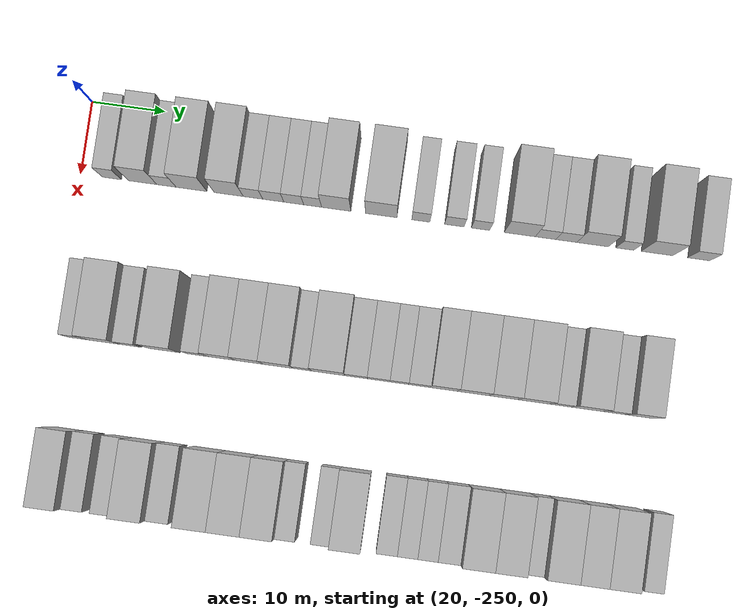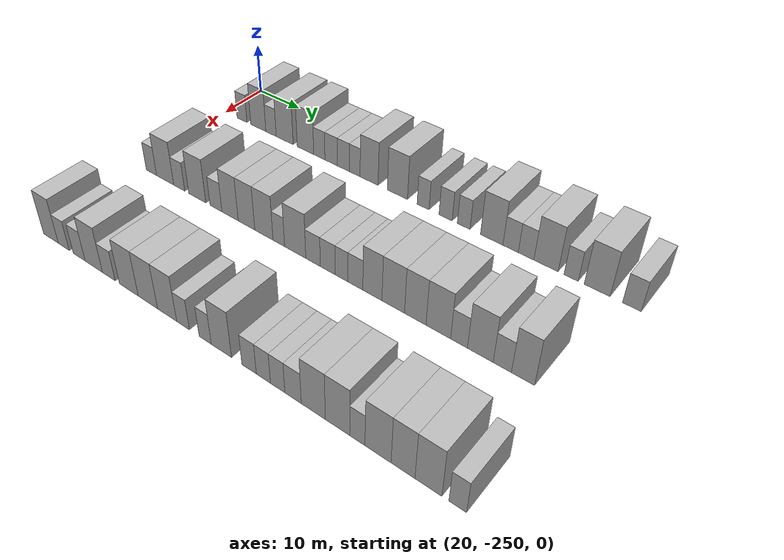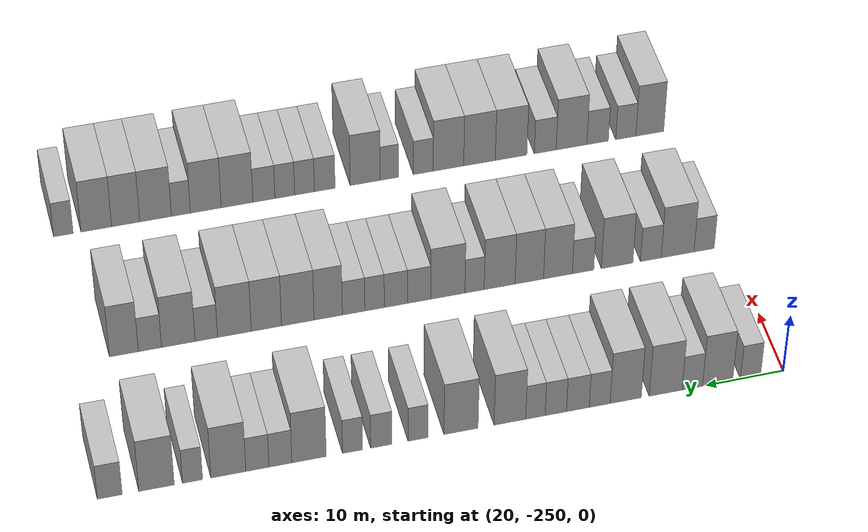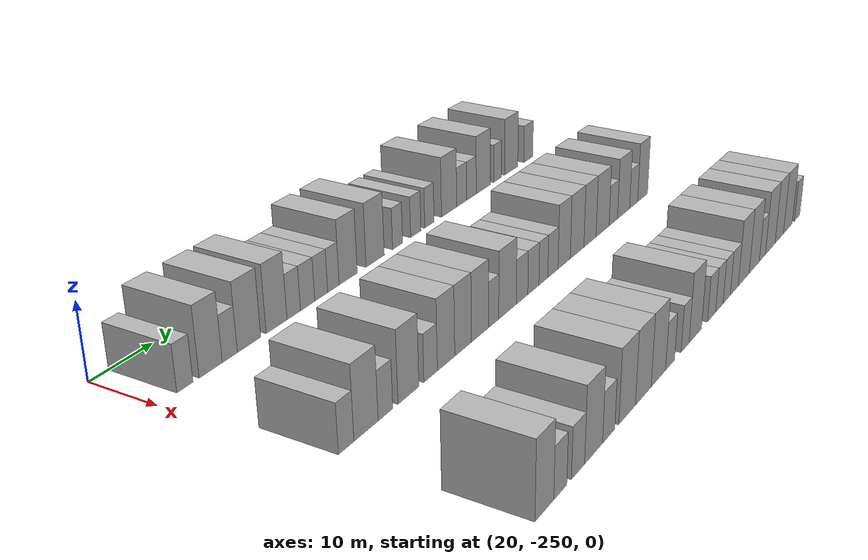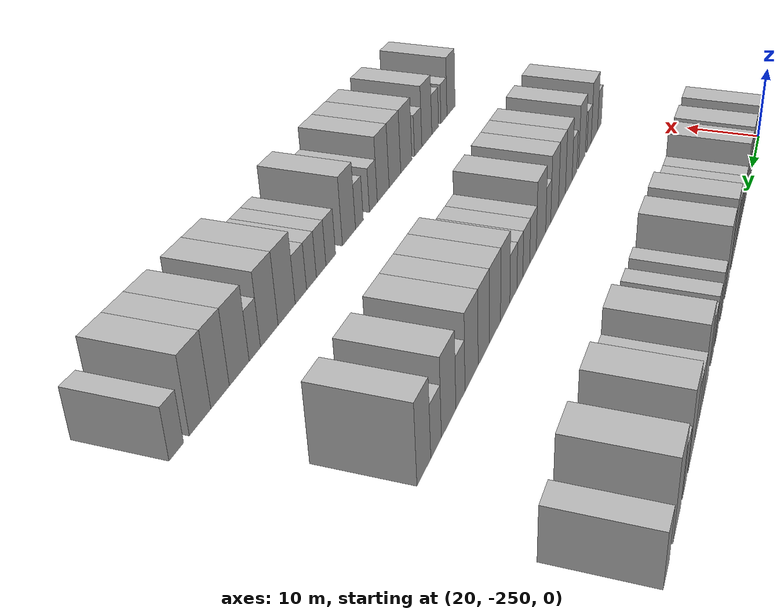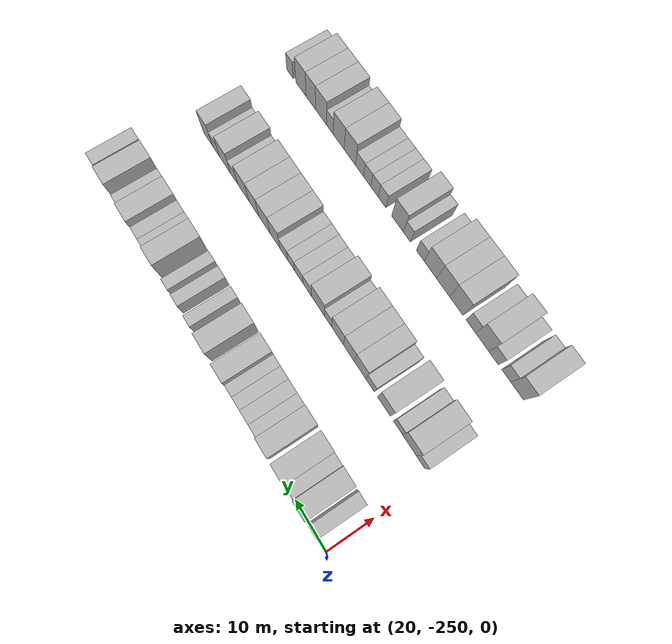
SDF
<sdf version="1.6">
 <world name="default">
  <model name="building_1">
   <static>1</static>
   <pose>25.0000 -245.7111 0 0.000000 0.000000 0.000000</pose>
   <link name="link">
    <pose>0 0 3.00 0 0 0</pose>
    <collision name="collision"><geometry><box><size>10.0000 2.5778 6.0000</size></box></geometry></collision>
    <visual name="visual">
     <cast_shadows>0</cast_shadows>
     <geometry><box><size>10.0000 2.5778 6.0000</size></box></geometry>
     <material>
      <script>
       <uri>model://HANNAS_wall/materials/scripts</uri>
       <uri>model://HANNAS_wall/materials/textures</uri>
       <name>vrc/HANNAS_wall</name>
      </script>
     </material>
    </visual>
   </link>
  </model>
  <model name="building_2">
   <static>1</static>
   <pose>25.0000 -241.4931 0 0.000000 0.000000 0.000000</pose>
   <link name="link">
    <pose>0 0 4.50 0 0 0</pose>
    <collision name="collision"><geometry><box><size>10.0000 3.8583 9.0000</size></box></geometry></collision>
    <visual name="visual">
     <cast_shadows>0</cast_shadows>
     <geometry><box><size>10.0000 3.8583 9.0000</size></box></geometry>
     <material>
      <script>
       <uri>model://HANNAS_wall/materials/scripts</uri>
       <uri>model://HANNAS_wall/materials/textures</uri>
       <name>vrc/HANNAS_wall</name>
      </script>
     </material>
    </visual>
   </link>
  </model>
  <model name="building_3">
   <static>1</static>
   <pose>25.0000 -238.2622 0 0.000000 0.000000 0.000000</pose>
   <link name="link">
    <pose>0 0 3.00 0 0 0</pose>
    <collision name="collision"><geometry><box><size>10.0000 2.6036 6.0000</size></box></geometry></collision>
    <visual name="visual">
     <cast_shadows>0</cast_shadows>
     <geometry><box><size>10.0000 2.6036 6.0000</size></box></geometry>
     <material>
      <script>
       <uri>model://HANNAS_wall/materials/scripts</uri>
       <uri>model://HANNAS_wall/materials/textures</uri>
       <name>vrc/HANNAS_wall</name>
      </script>
     </material>
    </visual>
   </link>
  </model>
  <model name="building_4">
   <static>1</static>
   <pose>25.0000 -234.8649 0 0.000000 0.000000 0.000000</pose>
   <link name="link">
    <pose>0 0 4.50 0 0 0</pose>
    <collision name="collision"><geometry><box><size>10.0000 4.1909 9.0000</size></box></geometry></collision>
    <visual name="visual">
     <cast_shadows>0</cast_shadows>
     <geometry><box><size>10.0000 4.1909 9.0000</size></box></geometry>
     <material>
      <script>
       <uri>model://HANNAS_wall/materials/scripts</uri>
       <uri>model://HANNAS_wall/materials/textures</uri>
       <name>vrc/HANNAS_wall</name>
      </script>
     </material>
    </visual>
   </link>
  </model>
  <model name="building_5">
   <static>1</static>
   <pose>25.0000 -229.7960 0 0.000000 0.000000 0.000000</pose>
   <link name="link">
    <pose>0 0 4.50 0 0 0</pose>
    <collision name="collision"><geometry><box><size>10.0000 3.9468 9.0000</size></box></geometry></collision>
    <visual name="visual">
     <cast_shadows>0</cast_shadows>
     <geometry><box><size>10.0000 3.9468 9.0000</size></box></geometry>
     <material>
      <script>
       <uri>model://HANNAS_wall/materials/scripts</uri>
       <uri>model://HANNAS_wall/materials/textures</uri>
       <name>vrc/HANNAS_wall</name>
      </script>
     </material>
    </visual>
   </link>
  </model>
  <model name="building_6">
   <static>1</static>
   <pose>25.0000 -226.4992 0 0.000000 0.000000 0.000000</pose>
   <link name="link">
    <pose>0 0 3.00 0 0 0</pose>
    <collision name="collision"><geometry><box><size>10.0000 2.6469 6.0000</size></box></geometry></collision>
    <visual name="visual">
     <cast_shadows>0</cast_shadows>
     <geometry><box><size>10.0000 2.6469 6.0000</size></box></geometry>
     <material>
      <script>
       <uri>model://HANNAS_wall/materials/scripts</uri>
       <uri>model://HANNAS_wall/materials/textures</uri>
       <name>vrc/HANNAS_wall</name>
      </script>
     </material>
    </visual>
   </link>
  </model>
  <model name="building_7">
   <static>1</static>
   <pose>25.0000 -223.7392 0 0.000000 0.000000 0.000000</pose>
   <link name="link">
    <pose>0 0 3.00 0 0 0</pose>
    <collision name="collision"><geometry><box><size>10.0000 2.8731 6.0000</size></box></geometry></collision>
    <visual name="visual">
     <cast_shadows>0</cast_shadows>
     <geometry><box><size>10.0000 2.8731 6.0000</size></box></geometry>
     <material>
      <script>
       <uri>model://HANNAS_wall/materials/scripts</uri>
       <uri>model://HANNAS_wall/materials/textures</uri>
       <name>vrc/HANNAS_wall</name>
      </script>
     </material>
    </visual>
   </link>
  </model>
  <model name="building_8">
   <static>1</static>
   <pose>25.0000 -220.9604 0 0.000000 0.000000 0.000000</pose>
   <link name="link">
    <pose>0 0 3.00 0 0 0</pose>
    <collision name="collision"><geometry><box><size>10.0000 2.6846 6.0000</size></box></geometry></collision>
    <visual name="visual">
     <cast_shadows>0</cast_shadows>
     <geometry><box><size>10.0000 2.6846 6.0000</size></box></geometry>
     <material>
      <script>
       <uri>model://HANNAS_wall/materials/scripts</uri>
       <uri>model://HANNAS_wall/materials/textures</uri>
       <name>vrc/HANNAS_wall</name>
      </script>
     </material>
    </visual>
   </link>
  </model>
  <model name="building_9">
   <static>1</static>
   <pose>25.0000 -218.4022 0 0.000000 0.000000 0.000000</pose>
   <link name="link">
    <pose>0 0 3.00 0 0 0</pose>
    <collision name="collision"><geometry><box><size>10.0000 2.4316 6.0000</size></box></geometry></collision>
    <visual name="visual">
     <cast_shadows>0</cast_shadows>
     <geometry><box><size>10.0000 2.4316 6.0000</size></box></geometry>
     <material>
      <script>
       <uri>model://HANNAS_wall/materials/scripts</uri>
       <uri>model://HANNAS_wall/materials/textures</uri>
       <name>vrc/HANNAS_wall</name>
      </script>
     </material>
    </visual>
   </link>
  </model>
  <model name="building_10">
   <static>1</static>
   <pose>25.0000 -215.2051 0 0.000000 0.000000 0.000000</pose>
   <link name="link">
    <pose>0 0 4.50 0 0 0</pose>
    <collision name="collision"><geometry><box><size>10.0000 3.9626 9.0000</size></box></geometry></collision>
    <visual name="visual">
     <cast_shadows>0</cast_shadows>
     <geometry><box><size>10.0000 3.9626 9.0000</size></box></geometry>
     <material>
      <script>
       <uri>model://HANNAS_wall/materials/scripts</uri>
       <uri>model://HANNAS_wall/materials/textures</uri>
       <name>vrc/HANNAS_wall</name>
      </script>
     </material>
    </visual>
   </link>
  </model>
  <model name="building_11">
   <static>1</static>
   <pose>25.0000 -209.0972 0 0.000000 0.000000 0.000000</pose>
   <link name="link">
    <pose>0 0 4.50 0 0 0</pose>
    <collision name="collision"><geometry><box><size>10.0000 4.2532 9.0000</size></box></geometry></collision>
    <visual name="visual">
     <cast_shadows>0</cast_shadows>
     <geometry><box><size>10.0000 4.2532 9.0000</size></box></geometry>
     <material>
      <script>
       <uri>model://HANNAS_wall/materials/scripts</uri>
       <uri>model://HANNAS_wall/materials/textures</uri>
       <name>vrc/HANNAS_wall</name>
      </script>
     </material>
    </visual>
   </link>
  </model>
  <model name="building_12">
   <static>1</static>
   <pose>25.0000 -203.7434 0 0.000000 0.000000 0.000000</pose>
   <link name="link">
    <pose>0 0 3.00 0 0 0</pose>
    <collision name="collision"><geometry><box><size>10.0000 2.4546 6.0000</size></box></geometry></collision>
    <visual name="visual">
     <cast_shadows>0</cast_shadows>
     <geometry><box><size>10.0000 2.4546 6.0000</size></box></geometry>
     <material>
      <script>
       <uri>model://HANNAS_wall/materials/scripts</uri>
       <uri>model://HANNAS_wall/materials/textures</uri>
       <name>vrc/HANNAS_wall</name>
      </script>
     </material>
    </visual>
   </link>
  </model>
  <model name="building_13">
   <static>1</static>
   <pose>25.0000 -199.2047 0 0.000000 0.000000 0.000000</pose>
   <link name="link">
    <pose>0 0 3.00 0 0 0</pose>
    <collision name="collision"><geometry><box><size>10.0000 2.6228 6.0000</size></box></geometry></collision>
    <visual name="visual">
     <cast_shadows>0</cast_shadows>
     <geometry><box><size>10.0000 2.6228 6.0000</size></box></geometry>
     <material>
      <script>
       <uri>model://HANNAS_wall/materials/scripts</uri>
       <uri>model://HANNAS_wall/materials/textures</uri>
       <name>vrc/HANNAS_wall</name>
      </script>
     </material>
    </visual>
   </link>
  </model>
  <model name="building_14">
   <static>1</static>
   <pose>25.0000 -195.6604 0 0.000000 0.000000 0.000000</pose>
   <link name="link">
    <pose>0 0 3.00 0 0 0</pose>
    <collision name="collision"><geometry><box><size>10.0000 2.4657 6.0000</size></box></geometry></collision>
    <visual name="visual">
     <cast_shadows>0</cast_shadows>
     <geometry><box><size>10.0000 2.4657 6.0000</size></box></geometry>
     <material>
      <script>
       <uri>model://HANNAS_wall/materials/scripts</uri>
       <uri>model://HANNAS_wall/materials/textures</uri>
       <name>vrc/HANNAS_wall</name>
      </script>
     </material>
    </visual>
   </link>
  </model>
  <model name="building_15">
   <static>1</static>
   <pose>25.0000 -190.3224 0 0.000000 0.000000 0.000000</pose>
   <link name="link">
    <pose>0 0 4.50 0 0 0</pose>
    <collision name="collision"><geometry><box><size>10.0000 4.2102 9.0000</size></box></geometry></collision>
    <visual name="visual">
     <cast_shadows>0</cast_shadows>
     <geometry><box><size>10.0000 4.2102 9.0000</size></box></geometry>
     <material>
      <script>
       <uri>model://HANNAS_wall/materials/scripts</uri>
       <uri>model://HANNAS_wall/materials/textures</uri>
       <name>vrc/HANNAS_wall</name>
      </script>
     </material>
    </visual>
   </link>
  </model>
  <model name="building_16">
   <static>1</static>
   <pose>25.0000 -186.8128 0 0.000000 0.000000 0.000000</pose>
   <link name="link">
    <pose>0 0 3.00 0 0 0</pose>
    <collision name="collision"><geometry><box><size>10.0000 2.8091 6.0000</size></box></geometry></collision>
    <visual name="visual">
     <cast_shadows>0</cast_shadows>
     <geometry><box><size>10.0000 2.8091 6.0000</size></box></geometry>
     <material>
      <script>
       <uri>model://HANNAS_wall/materials/scripts</uri>
       <uri>model://HANNAS_wall/materials/textures</uri>
       <name>vrc/HANNAS_wall</name>
      </script>
     </material>
    </visual>
   </link>
  </model>
  <model name="building_17">
   <static>1</static>
   <pose>25.0000 -184.0026 0 0.000000 0.000000 0.000000</pose>
   <link name="link">
    <pose>0 0 3.00 0 0 0</pose>
    <collision name="collision"><geometry><box><size>10.0000 2.8112 6.0000</size></box></geometry></collision>
    <visual name="visual">
     <cast_shadows>0</cast_shadows>
     <geometry><box><size>10.0000 2.8112 6.0000</size></box></geometry>
     <material>
      <script>
       <uri>model://HANNAS_wall/materials/scripts</uri>
       <uri>model://HANNAS_wall/materials/textures</uri>
       <name>vrc/HANNAS_wall</name>
      </script>
     </material>
    </visual>
   </link>
  </model>
  <model name="building_18">
   <static>1</static>
   <pose>25.0000 -180.4694 0 0.000000 0.000000 0.000000</pose>
   <link name="link">
    <pose>0 0 4.50 0 0 0</pose>
    <collision name="collision"><geometry><box><size>10.0000 4.2552 9.0000</size></box></geometry></collision>
    <visual name="visual">
     <cast_shadows>0</cast_shadows>
     <geometry><box><size>10.0000 4.2552 9.0000</size></box></geometry>
     <material>
      <script>
       <uri>model://HANNAS_wall/materials/scripts</uri>
       <uri>model://HANNAS_wall/materials/textures</uri>
       <name>vrc/HANNAS_wall</name>
      </script>
     </material>
    </visual>
   </link>
  </model>
  <model name="building_19">
   <static>1</static>
   <pose>25.0000 -176.1244 0 0.000000 0.000000 0.000000</pose>
   <link name="link">
    <pose>0 0 3.00 0 0 0</pose>
    <collision name="collision"><geometry><box><size>10.0000 2.4348 6.0000</size></box></geometry></collision>
    <visual name="visual">
     <cast_shadows>0</cast_shadows>
     <geometry><box><size>10.0000 2.4348 6.0000</size></box></geometry>
     <material>
      <script>
       <uri>model://HANNAS_wall/materials/scripts</uri>
       <uri>model://HANNAS_wall/materials/textures</uri>
       <name>vrc/HANNAS_wall</name>
      </script>
     </material>
    </visual>
   </link>
  </model>
  <model name="building_20">
   <static>1</static>
   <pose>25.0000 -171.7670 0 0.000000 0.000000 0.000000</pose>
   <link name="link">
    <pose>0 0 4.50 0 0 0</pose>
    <collision name="collision"><geometry><box><size>10.0000 4.2801 9.0000</size></box></geometry></collision>
    <visual name="visual">
     <cast_shadows>0</cast_shadows>
     <geometry><box><size>10.0000 4.2801 9.0000</size></box></geometry>
     <material>
      <script>
       <uri>model://HANNAS_wall/materials/scripts</uri>
       <uri>model://HANNAS_wall/materials/textures</uri>
       <name>vrc/HANNAS_wall</name>
      </script>
     </material>
    </visual>
   </link>
  </model>
  <model name="building_21">
   <static>1</static>
   <pose>25.0000 -166.1317 0 0.000000 0.000000 0.000000</pose>
   <link name="link">
    <pose>0 0 3.00 0 0 0</pose>
    <collision name="collision"><geometry><box><size>10.0000 2.9904 6.0000</size></box></geometry></collision>
    <visual name="visual">
     <cast_shadows>0</cast_shadows>
     <geometry><box><size>10.0000 2.9904 6.0000</size></box></geometry>
     <material>
      <script>
       <uri>model://HANNAS_wall/materials/scripts</uri>
       <uri>model://HANNAS_wall/materials/textures</uri>
       <name>vrc/HANNAS_wall</name>
      </script>
     </material>
    </visual>
   </link>
  </model>
  <model name="building_126">
   <static>1</static>
   <pose>47.0000 -246.6656 0 0.000000 0.000000 0.000000</pose>
   <link name="link">
    <pose>0 0 3.00 0 0 0</pose>
    <collision name="collision"><geometry><box><size>10.0000 2.6688 6.0000</size></box></geometry></collision>
    <visual name="visual">
     <cast_shadows>0</cast_shadows>
     <geometry><box><size>10.0000 2.6688 6.0000</size></box></geometry>
     <material>
      <script>
       <uri>model://HANNAS_wall/materials/scripts</uri>
       <uri>model://HANNAS_wall/materials/textures</uri>
       <name>vrc/HANNAS_wall</name>
      </script>
     </material>
    </visual>
   </link>
  </model>
  <model name="building_127">
   <static>1</static>
   <pose>47.0000 -243.1542 0 0.000000 0.000000 0.000000</pose>
   <link name="link">
    <pose>0 0 4.50 0 0 0</pose>
    <collision name="collision"><geometry><box><size>10.0000 4.3539 9.0000</size></box></geometry></collision>
    <visual name="visual">
     <cast_shadows>0</cast_shadows>
     <geometry><box><size>10.0000 4.3539 9.0000</size></box></geometry>
     <material>
      <script>
       <uri>model://HANNAS_wall/materials/scripts</uri>
       <uri>model://HANNAS_wall/materials/textures</uri>
       <name>vrc/HANNAS_wall</name>
      </script>
     </material>
    </visual>
   </link>
  </model>
  <model name="building_128">
   <static>1</static>
   <pose>47.0000 -239.6071 0 0.000000 0.000000 0.000000</pose>
   <link name="link">
    <pose>0 0 3.00 0 0 0</pose>
    <collision name="collision"><geometry><box><size>10.0000 2.7403 6.0000</size></box></geometry></collision>
    <visual name="visual">
     <cast_shadows>0</cast_shadows>
     <geometry><box><size>10.0000 2.7403 6.0000</size></box></geometry>
     <material>
      <script>
       <uri>model://HANNAS_wall/materials/scripts</uri>
       <uri>model://HANNAS_wall/materials/textures</uri>
       <name>vrc/HANNAS_wall</name>
      </script>
     </material>
    </visual>
   </link>
  </model>
  <model name="building_129">
   <static>1</static>
   <pose>47.0000 -235.1611 0 0.000000 0.000000 0.000000</pose>
   <link name="link">
    <pose>0 0 4.50 0 0 0</pose>
    <collision name="collision"><geometry><box><size>10.0000 4.1518 9.0000</size></box></geometry></collision>
    <visual name="visual">
     <cast_shadows>0</cast_shadows>
     <geometry><box><size>10.0000 4.1518 9.0000</size></box></geometry>
     <material>
      <script>
       <uri>model://HANNAS_wall/materials/scripts</uri>
       <uri>model://HANNAS_wall/materials/textures</uri>
       <name>vrc/HANNAS_wall</name>
      </script>
     </material>
    </visual>
   </link>
  </model>
  <model name="building_130">
   <static>1</static>
   <pose>47.0000 -230.6828 0 0.000000 0.000000 0.000000</pose>
   <link name="link">
    <pose>0 0 3.00 0 0 0</pose>
    <collision name="collision"><geometry><box><size>10.0000 2.8047 6.0000</size></box></geometry></collision>
    <visual name="visual">
     <cast_shadows>0</cast_shadows>
     <geometry><box><size>10.0000 2.8047 6.0000</size></box></geometry>
     <material>
      <script>
       <uri>model://HANNAS_wall/materials/scripts</uri>
       <uri>model://HANNAS_wall/materials/textures</uri>
       <name>vrc/HANNAS_wall</name>
      </script>
     </material>
    </visual>
   </link>
  </model>
  <model name="building_131">
   <static>1</static>
   <pose>47.0000 -227.3977 0 0.000000 0.000000 0.000000</pose>
   <link name="link">
    <pose>0 0 4.50 0 0 0</pose>
    <collision name="collision"><geometry><box><size>10.0000 3.7655 9.0000</size></box></geometry></collision>
    <visual name="visual">
     <cast_shadows>0</cast_shadows>
     <geometry><box><size>10.0000 3.7655 9.0000</size></box></geometry>
     <material>
      <script>
       <uri>model://HANNAS_wall/materials/scripts</uri>
       <uri>model://HANNAS_wall/materials/textures</uri>
       <name>vrc/HANNAS_wall</name>
      </script>
     </material>
    </visual>
   </link>
  </model>
  <model name="building_132">
   <static>1</static>
   <pose>47.0000 -223.6513 0 0.000000 0.000000 0.000000</pose>
   <link name="link">
    <pose>0 0 4.50 0 0 0</pose>
    <collision name="collision"><geometry><box><size>10.0000 3.7271 9.0000</size></box></geometry></collision>
    <visual name="visual">
     <cast_shadows>0</cast_shadows>
     <geometry><box><size>10.0000 3.7271 9.0000</size></box></geometry>
     <material>
      <script>
       <uri>model://HANNAS_wall/materials/scripts</uri>
       <uri>model://HANNAS_wall/materials/textures</uri>
       <name>vrc/HANNAS_wall</name>
      </script>
     </material>
    </visual>
   </link>
  </model>
  <model name="building_133">
   <static>1</static>
   <pose>47.0000 -219.7843 0 0.000000 0.000000 0.000000</pose>
   <link name="link">
    <pose>0 0 4.50 0 0 0</pose>
    <collision name="collision"><geometry><box><size>10.0000 4.0071 9.0000</size></box></geometry></collision>
    <visual name="visual">
     <cast_shadows>0</cast_shadows>
     <geometry><box><size>10.0000 4.0071 9.0000</size></box></geometry>
     <material>
      <script>
       <uri>model://HANNAS_wall/materials/scripts</uri>
       <uri>model://HANNAS_wall/materials/textures</uri>
       <name>vrc/HANNAS_wall</name>
      </script>
     </material>
    </visual>
   </link>
  </model>
  <model name="building_134">
   <static>1</static>
   <pose>47.0000 -216.5329 0 0.000000 0.000000 0.000000</pose>
   <link name="link">
    <pose>0 0 3.00 0 0 0</pose>
    <collision name="collision"><geometry><box><size>10.0000 2.4957 6.0000</size></box></geometry></collision>
    <visual name="visual">
     <cast_shadows>0</cast_shadows>
     <geometry><box><size>10.0000 2.4957 6.0000</size></box></geometry>
     <material>
      <script>
       <uri>model://HANNAS_wall/materials/scripts</uri>
       <uri>model://HANNAS_wall/materials/textures</uri>
       <name>vrc/HANNAS_wall</name>
      </script>
     </material>
    </visual>
   </link>
  </model>
  <model name="building_135">
   <static>1</static>
   <pose>47.0000 -213.0663 0 0.000000 0.000000 0.000000</pose>
   <link name="link">
    <pose>0 0 4.50 0 0 0</pose>
    <collision name="collision"><geometry><box><size>10.0000 4.4374 9.0000</size></box></geometry></collision>
    <visual name="visual">
     <cast_shadows>0</cast_shadows>
     <geometry><box><size>10.0000 4.4374 9.0000</size></box></geometry>
     <material>
      <script>
       <uri>model://HANNAS_wall/materials/scripts</uri>
       <uri>model://HANNAS_wall/materials/textures</uri>
       <name>vrc/HANNAS_wall</name>
      </script>
     </material>
    </visual>
   </link>
  </model>
  <model name="building_136">
   <static>1</static>
   <pose>47.0000 -209.3518 0 0.000000 0.000000 0.000000</pose>
   <link name="link">
    <pose>0 0 3.00 0 0 0</pose>
    <collision name="collision"><geometry><box><size>10.0000 2.9915 6.0000</size></box></geometry></collision>
    <visual name="visual">
     <cast_shadows>0</cast_shadows>
     <geometry><box><size>10.0000 2.9915 6.0000</size></box></geometry>
     <material>
      <script>
       <uri>model://HANNAS_wall/materials/scripts</uri>
       <uri>model://HANNAS_wall/materials/textures</uri>
       <name>vrc/HANNAS_wall</name>
      </script>
     </material>
    </visual>
   </link>
  </model>
  <model name="building_137">
   <static>1</static>
   <pose>47.0000 -206.3673 0 0.000000 0.000000 0.000000</pose>
   <link name="link">
    <pose>0 0 3.00 0 0 0</pose>
    <collision name="collision"><geometry><box><size>10.0000 2.9774 6.0000</size></box></geometry></collision>
    <visual name="visual">
     <cast_shadows>0</cast_shadows>
     <geometry><box><size>10.0000 2.9774 6.0000</size></box></geometry>
     <material>
      <script>
       <uri>model://HANNAS_wall/materials/scripts</uri>
       <uri>model://HANNAS_wall/materials/textures</uri>
       <name>vrc/HANNAS_wall</name>
      </script>
     </material>
    </visual>
   </link>
  </model>
  <model name="building_138">
   <static>1</static>
   <pose>47.0000 -203.6385 0 0.000000 0.000000 0.000000</pose>
   <link name="link">
    <pose>0 0 3.00 0 0 0</pose>
    <collision name="collision"><geometry><box><size>10.0000 2.4801 6.0000</size></box></geometry></collision>
    <visual name="visual">
     <cast_shadows>0</cast_shadows>
     <geometry><box><size>10.0000 2.4801 6.0000</size></box></geometry>
     <material>
      <script>
       <uri>model://HANNAS_wall/materials/scripts</uri>
       <uri>model://HANNAS_wall/materials/textures</uri>
       <name>vrc/HANNAS_wall</name>
      </script>
     </material>
    </visual>
   </link>
  </model>
  <model name="building_139">
   <static>1</static>
   <pose>47.0000 -200.9522 0 0.000000 0.000000 0.000000</pose>
   <link name="link">
    <pose>0 0 3.00 0 0 0</pose>
    <collision name="collision"><geometry><box><size>10.0000 2.8925 6.0000</size></box></geometry></collision>
    <visual name="visual">
     <cast_shadows>0</cast_shadows>
     <geometry><box><size>10.0000 2.8925 6.0000</size></box></geometry>
     <material>
      <script>
       <uri>model://HANNAS_wall/materials/scripts</uri>
       <uri>model://HANNAS_wall/materials/textures</uri>
       <name>vrc/HANNAS_wall</name>
      </script>
     </material>
    </visual>
   </link>
  </model>
  <model name="building_140">
   <static>1</static>
   <pose>47.0000 -197.7024 0 0.000000 0.000000 0.000000</pose>
   <link name="link">
    <pose>0 0 4.50 0 0 0</pose>
    <collision name="collision"><geometry><box><size>10.0000 3.6072 9.0000</size></box></geometry></collision>
    <visual name="visual">
     <cast_shadows>0</cast_shadows>
     <geometry><box><size>10.0000 3.6072 9.0000</size></box></geometry>
     <material>
      <script>
       <uri>model://HANNAS_wall/materials/scripts</uri>
       <uri>model://HANNAS_wall/materials/textures</uri>
       <name>vrc/HANNAS_wall</name>
      </script>
     </material>
    </visual>
   </link>
  </model>
  <model name="building_141">
   <static>1</static>
   <pose>47.0000 -193.8233 0 0.000000 0.000000 0.000000</pose>
   <link name="link">
    <pose>0 0 4.50 0 0 0</pose>
    <collision name="collision"><geometry><box><size>10.0000 4.1510 9.0000</size></box></geometry></collision>
    <visual name="visual">
     <cast_shadows>0</cast_shadows>
     <geometry><box><size>10.0000 4.1510 9.0000</size></box></geometry>
     <material>
      <script>
       <uri>model://HANNAS_wall/materials/scripts</uri>
       <uri>model://HANNAS_wall/materials/textures</uri>
       <name>vrc/HANNAS_wall</name>
      </script>
     </material>
    </visual>
   </link>
  </model>
  <model name="building_142">
   <static>1</static>
   <pose>47.0000 -189.8310 0 0.000000 0.000000 0.000000</pose>
   <link name="link">
    <pose>0 0 4.50 0 0 0</pose>
    <collision name="collision"><geometry><box><size>10.0000 3.8335 9.0000</size></box></geometry></collision>
    <visual name="visual">
     <cast_shadows>0</cast_shadows>
     <geometry><box><size>10.0000 3.8335 9.0000</size></box></geometry>
     <material>
      <script>
       <uri>model://HANNAS_wall/materials/scripts</uri>
       <uri>model://HANNAS_wall/materials/textures</uri>
       <name>vrc/HANNAS_wall</name>
      </script>
     </material>
    </visual>
   </link>
  </model>
  <model name="building_143">
   <static>1</static>
   <pose>47.0000 -185.7776 0 0.000000 0.000000 0.000000</pose>
   <link name="link">
    <pose>0 0 4.50 0 0 0</pose>
    <collision name="collision"><geometry><box><size>10.0000 4.2732 9.0000</size></box></geometry></collision>
    <visual name="visual">
     <cast_shadows>0</cast_shadows>
     <geometry><box><size>10.0000 4.2732 9.0000</size></box></geometry>
     <material>
      <script>
       <uri>model://HANNAS_wall/materials/scripts</uri>
       <uri>model://HANNAS_wall/materials/textures</uri>
       <name>vrc/HANNAS_wall</name>
      </script>
     </material>
    </visual>
   </link>
  </model>
  <model name="building_144">
   <static>1</static>
   <pose>47.0000 -182.2263 0 0.000000 0.000000 0.000000</pose>
   <link name="link">
    <pose>0 0 3.00 0 0 0</pose>
    <collision name="collision"><geometry><box><size>10.0000 2.8296 6.0000</size></box></geometry></collision>
    <visual name="visual">
     <cast_shadows>0</cast_shadows>
     <geometry><box><size>10.0000 2.8296 6.0000</size></box></geometry>
     <material>
      <script>
       <uri>model://HANNAS_wall/materials/scripts</uri>
       <uri>model://HANNAS_wall/materials/textures</uri>
       <name>vrc/HANNAS_wall</name>
      </script>
     </material>
    </visual>
   </link>
  </model>
  <model name="building_145">
   <static>1</static>
   <pose>47.0000 -178.6992 0 0.000000 0.000000 0.000000</pose>
   <link name="link">
    <pose>0 0 4.50 0 0 0</pose>
    <collision name="collision"><geometry><box><size>10.0000 4.2246 9.0000</size></box></geometry></collision>
    <visual name="visual">
     <cast_shadows>0</cast_shadows>
     <geometry><box><size>10.0000 4.2246 9.0000</size></box></geometry>
     <material>
      <script>
       <uri>model://HANNAS_wall/materials/scripts</uri>
       <uri>model://HANNAS_wall/materials/textures</uri>
       <name>vrc/HANNAS_wall</name>
      </script>
     </material>
    </visual>
   </link>
  </model>
  <model name="building_146">
   <static>1</static>
   <pose>47.0000 -175.1286 0 0.000000 0.000000 0.000000</pose>
   <link name="link">
    <pose>0 0 3.00 0 0 0</pose>
    <collision name="collision"><geometry><box><size>10.0000 2.9165 6.0000</size></box></geometry></collision>
    <visual name="visual">
     <cast_shadows>0</cast_shadows>
     <geometry><box><size>10.0000 2.9165 6.0000</size></box></geometry>
     <material>
      <script>
       <uri>model://HANNAS_wall/materials/scripts</uri>
       <uri>model://HANNAS_wall/materials/textures</uri>
       <name>vrc/HANNAS_wall</name>
      </script>
     </material>
    </visual>
   </link>
  </model>
  <model name="building_147">
   <static>1</static>
   <pose>47.0000 -171.8610 0 0.000000 0.000000 0.000000</pose>
   <link name="link">
    <pose>0 0 4.50 0 0 0</pose>
    <collision name="collision"><geometry><box><size>10.0000 3.6189 9.0000</size></box></geometry></collision>
    <visual name="visual">
     <cast_shadows>0</cast_shadows>
     <geometry><box><size>10.0000 3.6189 9.0000</size></box></geometry>
     <material>
      <script>
       <uri>model://HANNAS_wall/materials/scripts</uri>
       <uri>model://HANNAS_wall/materials/textures</uri>
       <name>vrc/HANNAS_wall</name>
      </script>
     </material>
    </visual>
   </link>
  </model>
  <model name="building_258">
   <static>1</static>
   <pose>69.0000 -246.0923 0 0.000000 0.000000 0.000000</pose>
   <link name="link">
    <pose>0 0 4.50 0 0 0</pose>
    <collision name="collision"><geometry><box><size>10.0000 3.8154 9.0000</size></box></geometry></collision>
    <visual name="visual">
     <cast_shadows>0</cast_shadows>
     <geometry><box><size>10.0000 3.8154 9.0000</size></box></geometry>
     <material>
      <script>
       <uri>model://HANNAS_wall/materials/scripts</uri>
       <uri>model://HANNAS_wall/materials/textures</uri>
       <name>vrc/HANNAS_wall</name>
      </script>
     </material>
    </visual>
   </link>
  </model>
  <model name="building_259">
   <static>1</static>
   <pose>69.0000 -242.8091 0 0.000000 0.000000 0.000000</pose>
   <link name="link">
    <pose>0 0 3.00 0 0 0</pose>
    <collision name="collision"><geometry><box><size>10.0000 2.7512 6.0000</size></box></geometry></collision>
    <visual name="visual">
     <cast_shadows>0</cast_shadows>
     <geometry><box><size>10.0000 2.7512 6.0000</size></box></geometry>
     <material>
      <script>
       <uri>model://HANNAS_wall/materials/scripts</uri>
       <uri>model://HANNAS_wall/materials/textures</uri>
       <name>vrc/HANNAS_wall</name>
      </script>
     </material>
    </visual>
   </link>
  </model>
  <model name="building_260">
   <static>1</static>
   <pose>69.0000 -238.9662 0 0.000000 0.000000 0.000000</pose>
   <link name="link">
    <pose>0 0 3.00 0 0 0</pose>
    <collision name="collision"><geometry><box><size>10.0000 2.9346 6.0000</size></box></geometry></collision>
    <visual name="visual">
     <cast_shadows>0</cast_shadows>
     <geometry><box><size>10.0000 2.9346 6.0000</size></box></geometry>
     <material>
      <script>
       <uri>model://HANNAS_wall/materials/scripts</uri>
       <uri>model://HANNAS_wall/materials/textures</uri>
       <name>vrc/HANNAS_wall</name>
      </script>
     </material>
    </visual>
   </link>
  </model>
  <model name="building_261">
   <static>1</static>
   <pose>69.0000 -235.4103 0 0.000000 0.000000 0.000000</pose>
   <link name="link">
    <pose>0 0 4.50 0 0 0</pose>
    <collision name="collision"><geometry><box><size>10.0000 4.1773 9.0000</size></box></geometry></collision>
    <visual name="visual">
     <cast_shadows>0</cast_shadows>
     <geometry><box><size>10.0000 4.1773 9.0000</size></box></geometry>
     <material>
      <script>
       <uri>model://HANNAS_wall/materials/scripts</uri>
       <uri>model://HANNAS_wall/materials/textures</uri>
       <name>vrc/HANNAS_wall</name>
      </script>
     </material>
    </visual>
   </link>
  </model>
  <model name="building_262">
   <static>1</static>
   <pose>69.0000 -231.8343 0 0.000000 0.000000 0.000000</pose>
   <link name="link">
    <pose>0 0 3.00 0 0 0</pose>
    <collision name="collision"><geometry><box><size>10.0000 2.9747 6.0000</size></box></geometry></collision>
    <visual name="visual">
     <cast_shadows>0</cast_shadows>
     <geometry><box><size>10.0000 2.9747 6.0000</size></box></geometry>
     <material>
      <script>
       <uri>model://HANNAS_wall/materials/scripts</uri>
       <uri>model://HANNAS_wall/materials/textures</uri>
       <name>vrc/HANNAS_wall</name>
      </script>
     </material>
    </visual>
   </link>
  </model>
  <model name="building_263">
   <static>1</static>
   <pose>69.0000 -227.2125 0 0.000000 0.000000 0.000000</pose>
   <link name="link">
    <pose>0 0 4.50 0 0 0</pose>
    <collision name="collision"><geometry><box><size>10.0000 4.2689 9.0000</size></box></geometry></collision>
    <visual name="visual">
     <cast_shadows>0</cast_shadows>
     <geometry><box><size>10.0000 4.2689 9.0000</size></box></geometry>
     <material>
      <script>
       <uri>model://HANNAS_wall/materials/scripts</uri>
       <uri>model://HANNAS_wall/materials/textures</uri>
       <name>vrc/HANNAS_wall</name>
      </script>
     </material>
    </visual>
   </link>
  </model>
  <model name="building_264">
   <static>1</static>
   <pose>69.0000 -222.9492 0 0.000000 0.000000 0.000000</pose>
   <link name="link">
    <pose>0 0 4.50 0 0 0</pose>
    <collision name="collision"><geometry><box><size>10.0000 4.2577 9.0000</size></box></geometry></collision>
    <visual name="visual">
     <cast_shadows>0</cast_shadows>
     <geometry><box><size>10.0000 4.2577 9.0000</size></box></geometry>
     <material>
      <script>
       <uri>model://HANNAS_wall/materials/scripts</uri>
       <uri>model://HANNAS_wall/materials/textures</uri>
       <name>vrc/HANNAS_wall</name>
      </script>
     </material>
    </visual>
   </link>
  </model>
  <model name="building_265">
   <static>1</static>
   <pose>69.0000 -218.7668 0 0.000000 0.000000 0.000000</pose>
   <link name="link">
    <pose>0 0 4.50 0 0 0</pose>
    <collision name="collision"><geometry><box><size>10.0000 4.1072 9.0000</size></box></geometry></collision>
    <visual name="visual">
     <cast_shadows>0</cast_shadows>
     <geometry><box><size>10.0000 4.1072 9.0000</size></box></geometry>
     <material>
      <script>
       <uri>model://HANNAS_wall/materials/scripts</uri>
       <uri>model://HANNAS_wall/materials/textures</uri>
       <name>vrc/HANNAS_wall</name>
      </script>
     </material>
    </visual>
   </link>
  </model>
  <model name="building_266">
   <static>1</static>
   <pose>69.0000 -215.3929 0 0.000000 0.000000 0.000000</pose>
   <link name="link">
    <pose>0 0 3.00 0 0 0</pose>
    <collision name="collision"><geometry><box><size>10.0000 2.6405 6.0000</size></box></geometry></collision>
    <visual name="visual">
     <cast_shadows>0</cast_shadows>
     <geometry><box><size>10.0000 2.6405 6.0000</size></box></geometry>
     <material>
      <script>
       <uri>model://HANNAS_wall/materials/scripts</uri>
       <uri>model://HANNAS_wall/materials/textures</uri>
       <name>vrc/HANNAS_wall</name>
      </script>
     </material>
    </visual>
   </link>
  </model>
  <model name="building_267">
   <static>1</static>
   <pose>69.0000 -210.8477 0 0.000000 0.000000 0.000000</pose>
   <link name="link">
    <pose>0 0 3.00 0 0 0</pose>
    <collision name="collision"><geometry><box><size>10.0000 2.4501 6.0000</size></box></geometry></collision>
    <visual name="visual">
     <cast_shadows>0</cast_shadows>
     <geometry><box><size>10.0000 2.4501 6.0000</size></box></geometry>
     <material>
      <script>
       <uri>model://HANNAS_wall/materials/scripts</uri>
       <uri>model://HANNAS_wall/materials/textures</uri>
       <name>vrc/HANNAS_wall</name>
      </script>
     </material>
    </visual>
   </link>
  </model>
  <model name="building_268">
   <static>1</static>
   <pose>69.0000 -207.6304 0 0.000000 0.000000 0.000000</pose>
   <link name="link">
    <pose>0 0 4.50 0 0 0</pose>
    <collision name="collision"><geometry><box><size>10.0000 3.9844 9.0000</size></box></geometry></collision>
    <visual name="visual">
     <cast_shadows>0</cast_shadows>
     <geometry><box><size>10.0000 3.9844 9.0000</size></box></geometry>
     <material>
      <script>
       <uri>model://HANNAS_wall/materials/scripts</uri>
       <uri>model://HANNAS_wall/materials/textures</uri>
       <name>vrc/HANNAS_wall</name>
      </script>
     </material>
    </visual>
   </link>
  </model>
  <model name="building_269">
   <static>1</static>
   <pose>69.0000 -202.2728 0 0.000000 0.000000 0.000000</pose>
   <link name="link">
    <pose>0 0 3.00 0 0 0</pose>
    <collision name="collision"><geometry><box><size>10.0000 2.7308 6.0000</size></box></geometry></collision>
    <visual name="visual">
     <cast_shadows>0</cast_shadows>
     <geometry><box><size>10.0000 2.7308 6.0000</size></box></geometry>
     <material>
      <script>
       <uri>model://HANNAS_wall/materials/scripts</uri>
       <uri>model://HANNAS_wall/materials/textures</uri>
       <name>vrc/HANNAS_wall</name>
      </script>
     </material>
    </visual>
   </link>
  </model>
  <model name="building_270">
   <static>1</static>
   <pose>69.0000 -199.5960 0 0.000000 0.000000 0.000000</pose>
   <link name="link">
    <pose>0 0 3.00 0 0 0</pose>
    <collision name="collision"><geometry><box><size>10.0000 2.6227 6.0000</size></box></geometry></collision>
    <visual name="visual">
     <cast_shadows>0</cast_shadows>
     <geometry><box><size>10.0000 2.6227 6.0000</size></box></geometry>
     <material>
      <script>
       <uri>model://HANNAS_wall/materials/scripts</uri>
       <uri>model://HANNAS_wall/materials/textures</uri>
       <name>vrc/HANNAS_wall</name>
      </script>
     </material>
    </visual>
   </link>
  </model>
  <model name="building_271">
   <static>1</static>
   <pose>69.0000 -196.9821 0 0.000000 0.000000 0.000000</pose>
   <link name="link">
    <pose>0 0 3.00 0 0 0</pose>
    <collision name="collision"><geometry><box><size>10.0000 2.6052 6.0000</size></box></geometry></collision>
    <visual name="visual">
     <cast_shadows>0</cast_shadows>
     <geometry><box><size>10.0000 2.6052 6.0000</size></box></geometry>
     <material>
      <script>
       <uri>model://HANNAS_wall/materials/scripts</uri>
       <uri>model://HANNAS_wall/materials/textures</uri>
       <name>vrc/HANNAS_wall</name>
      </script>
     </material>
    </visual>
   </link>
  </model>
  <model name="building_272">
   <static>1</static>
   <pose>69.0000 -194.2269 0 0.000000 0.000000 0.000000</pose>
   <link name="link">
    <pose>0 0 3.00 0 0 0</pose>
    <collision name="collision"><geometry><box><size>10.0000 2.9052 6.0000</size></box></geometry></collision>
    <visual name="visual">
     <cast_shadows>0</cast_shadows>
     <geometry><box><size>10.0000 2.9052 6.0000</size></box></geometry>
     <material>
      <script>
       <uri>model://HANNAS_wall/materials/scripts</uri>
       <uri>model://HANNAS_wall/materials/textures</uri>
       <name>vrc/HANNAS_wall</name>
      </script>
     </material>
    </visual>
   </link>
  </model>
  <model name="building_273">
   <static>1</static>
   <pose>69.0000 -190.6945 0 0.000000 0.000000 0.000000</pose>
   <link name="link">
    <pose>0 0 4.50 0 0 0</pose>
    <collision name="collision"><geometry><box><size>10.0000 4.1596 9.0000</size></box></geometry></collision>
    <visual name="visual">
     <cast_shadows>0</cast_shadows>
     <geometry><box><size>10.0000 4.1596 9.0000</size></box></geometry>
     <material>
      <script>
       <uri>model://HANNAS_wall/materials/scripts</uri>
       <uri>model://HANNAS_wall/materials/textures</uri>
       <name>vrc/HANNAS_wall</name>
      </script>
     </material>
    </visual>
   </link>
  </model>
  <model name="building_274">
   <static>1</static>
   <pose>69.0000 -186.5897 0 0.000000 0.000000 0.000000</pose>
   <link name="link">
    <pose>0 0 4.50 0 0 0</pose>
    <collision name="collision"><geometry><box><size>10.0000 4.0500 9.0000</size></box></geometry></collision>
    <visual name="visual">
     <cast_shadows>0</cast_shadows>
     <geometry><box><size>10.0000 4.0500 9.0000</size></box></geometry>
     <material>
      <script>
       <uri>model://HANNAS_wall/materials/scripts</uri>
       <uri>model://HANNAS_wall/materials/textures</uri>
       <name>vrc/HANNAS_wall</name>
      </script>
     </material>
    </visual>
   </link>
  </model>
  <model name="building_275">
   <static>1</static>
   <pose>69.0000 -183.3305 0 0.000000 0.000000 0.000000</pose>
   <link name="link">
    <pose>0 0 3.00 0 0 0</pose>
    <collision name="collision"><geometry><box><size>10.0000 2.4684 6.0000</size></box></geometry></collision>
    <visual name="visual">
     <cast_shadows>0</cast_shadows>
     <geometry><box><size>10.0000 2.4684 6.0000</size></box></geometry>
     <material>
      <script>
       <uri>model://HANNAS_wall/materials/scripts</uri>
       <uri>model://HANNAS_wall/materials/textures</uri>
       <name>vrc/HANNAS_wall</name>
      </script>
     </material>
    </visual>
   </link>
  </model>
  <model name="building_276">
   <static>1</static>
   <pose>69.0000 -180.0323 0 0.000000 0.000000 0.000000</pose>
   <link name="link">
    <pose>0 0 4.50 0 0 0</pose>
    <collision name="collision"><geometry><box><size>10.0000 4.1280 9.0000</size></box></geometry></collision>
    <visual name="visual">
     <cast_shadows>0</cast_shadows>
     <geometry><box><size>10.0000 4.1280 9.0000</size></box></geometry>
     <material>
      <script>
       <uri>model://HANNAS_wall/materials/scripts</uri>
       <uri>model://HANNAS_wall/materials/textures</uri>
       <name>vrc/HANNAS_wall</name>
      </script>
     </material>
    </visual>
   </link>
  </model>
  <model name="building_277">
   <static>1</static>
   <pose>69.0000 -176.1465 0 0.000000 0.000000 0.000000</pose>
   <link name="link">
    <pose>0 0 4.50 0 0 0</pose>
    <collision name="collision"><geometry><box><size>10.0000 3.6436 9.0000</size></box></geometry></collision>
    <visual name="visual">
     <cast_shadows>0</cast_shadows>
     <geometry><box><size>10.0000 3.6436 9.0000</size></box></geometry>
     <material>
      <script>
       <uri>model://HANNAS_wall/materials/scripts</uri>
       <uri>model://HANNAS_wall/materials/textures</uri>
       <name>vrc/HANNAS_wall</name>
      </script>
     </material>
    </visual>
   </link>
  </model>
  <model name="building_278">
   <static>1</static>
   <pose>69.0000 -172.3324 0 0.000000 0.000000 0.000000</pose>
   <link name="link">
    <pose>0 0 4.50 0 0 0</pose>
    <collision name="collision"><geometry><box><size>10.0000 3.9846 9.0000</size></box></geometry></collision>
    <visual name="visual">
     <cast_shadows>0</cast_shadows>
     <geometry><box><size>10.0000 3.9846 9.0000</size></box></geometry>
     <material>
      <script>
       <uri>model://HANNAS_wall/materials/scripts</uri>
       <uri>model://HANNAS_wall/materials/textures</uri>
       <name>vrc/HANNAS_wall</name>
      </script>
     </material>
    </visual>
   </link>
  </model>
  <model name="building_279">
   <static>1</static>
   <pose>69.0000 -168.0765 0 0.000000 0.000000 0.000000</pose>
   <link name="link">
    <pose>0 0 3.00 0 0 0</pose>
    <collision name="collision"><geometry><box><size>10.0000 2.5272 6.0000</size></box></geometry></collision>
    <visual name="visual">
     <cast_shadows>0</cast_shadows>
     <geometry><box><size>10.0000 2.5272 6.0000</size></box></geometry>
     <material>
      <script>
       <uri>model://HANNAS_wall/materials/scripts</uri>
       <uri>model://HANNAS_wall/materials/textures</uri>
       <name>vrc/HANNAS_wall</name>
      </script>
     </material>
    </visual>
   </link>
  </model>
 </world>
</sdf>
